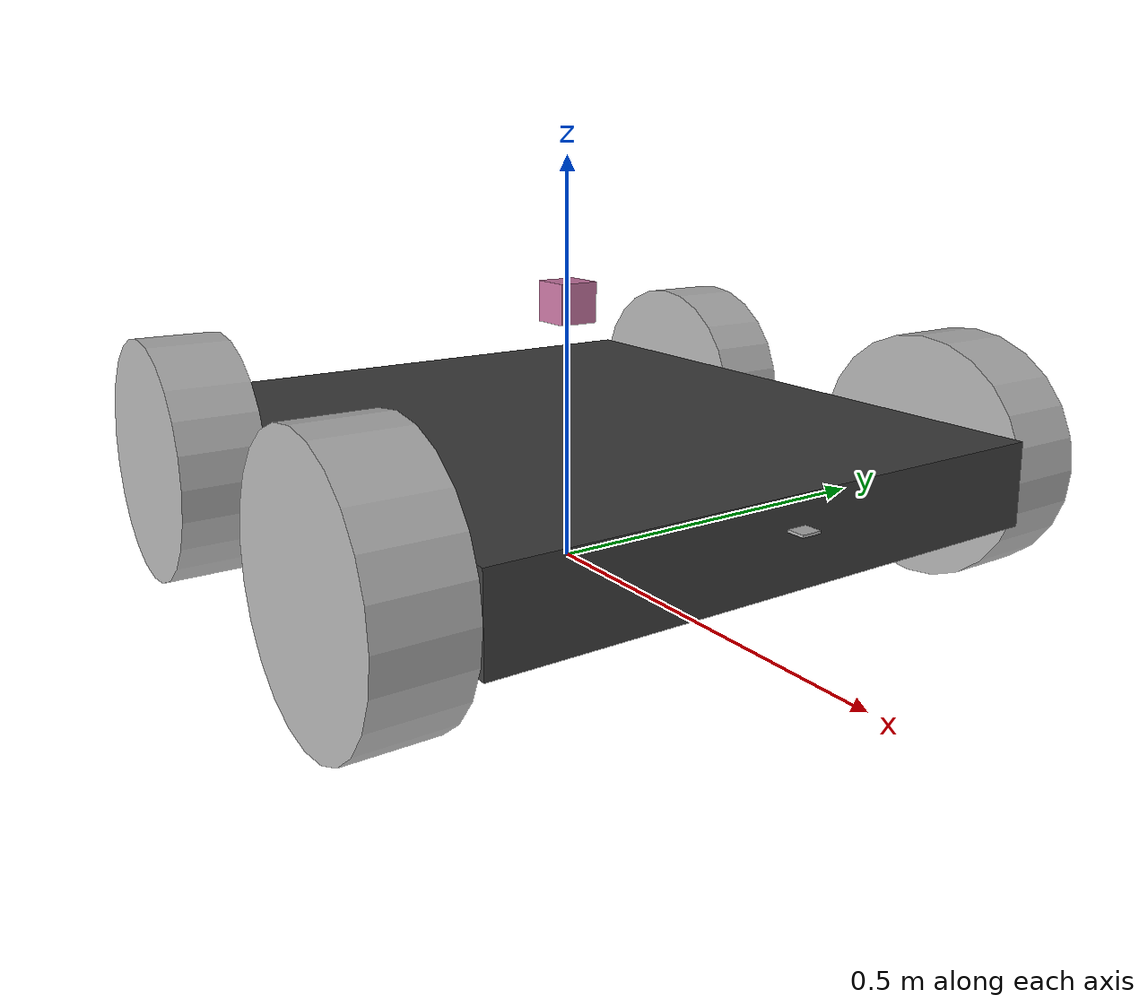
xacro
<?xml version="1.0"?>
<robot xmlns:xacro="http://www.ros.org/wiki/xacro" name="rover">
<xacro:include filename="$(find mobile_robot)/urdf/robot.gazebo" />

<xacro:property name="c1"       value="0.083"/>
<xacro:property name="c2"       value="0.5"/>
<xacro:property name="mass"     value="1"/>
<xacro:property name="width"    value="0.8"/>
<xacro:property name="height"   value="0.1"/>
<xacro:property name="depth"    value="0.7 "/>
<xacro:property name="radius"   value="0.15 "/>

<!--  	#############	BODY		############		 -->

<!-- BASE LINK AND JOINT -->

  <link name="base_footprint"/>

  <link name="base_link">
    <visual>
      <origin xyz="0 0 0" rpy="0.0 0.0 0.0"/>
      <geometry>
        <box size="0.8 0.7 0.1" />
      </geometry>
      <material name="DarkGrey">
        <color rgba="0.25 0.25 0.25 1.0"/>
      </material>
    </visual>
    <collision>
      <origin xyz="0 0 0" rpy="0.0 0.0 0.0"/>
      <geometry>
        <box size="0.8 0.7 0.1" />
      </geometry>
    </collision>
    <inertial>
      <mass value="0.5"/>
      <origin xyz="0.0 0.0 0" rpy="0.0 0.0 0.0"/>
      <inertia  ixx="${c1 * mass * (height * height + depth * depth)}" ixy="0.0" ixz="0.0"
                iyy="${c1 * mass * (height * height + depth * depth)}" iyz="0.0"
                izz="${c1 * mass * (height * height + depth * depth)}"/>
    </inertial>
  </link>

<joint name="base_joint" type="fixed">
		<origin xyz="0 0 0.135" rpy="0 0 0" />
		<parent link="base_footprint"/>
		<child link="base_link" />
	</joint>

<!--WHEEL LINKS AND JOINT -->

<xacro:macro name="wheel" params="name x y">
    <link name="wheel_${name}_link">
        <inertial>
            <origin xyz="0 0 0" rpy="0 0 0"/>
            <mass value="0.25"/>
            <inertia  ixx="${c2 * mass * (radius*radius)}" ixy="0.0" ixz="0.0"
                      iyy="${c2 * mass * (radius*radius)}" iyz="0.0"
                      izz="${c2 * mass * (radius*radius)}"/>
        </inertial>
        <visual name="wheel_${name}_visual">
            <origin xyz="0 0 0" rpy="1.57 0.0 0.0"/>
            <geometry>
              <cylinder radius="0.15" length="0.1"/>
            </geometry>
            <material name="LightGrey">
              <color rgba="0.7 0.7 0.7 1.0"/>
            </material>
        </visual>
        <collision>
            <origin xyz="0 0 0" rpy="1.57 0.0 0.0"/>
            <geometry>
              <cylinder radius="0.15" length="0.1"/>
            </geometry>
        </collision>
    </link>
    <joint name="wheel_${name}_joint" type="continuous">
        <origin xyz="${x} ${y} 0" rpy="0 0 0"/>
        <parent link="base_link"/>
        <child link="wheel_${name}_link"/>
        <axis xyz="0 1 0"/>
        <limit velocity="100.0" effort="1000.0" />
        <dynamics damping="1.0" friction="1.0"/>
    </joint>
</xacro:macro>

<!-- Wheel Creating using macros -->
<xacro:wheel name="rear_right"  x="0.250" y =" 0.40"/>
<xacro:wheel name="front_right" x="-0.250" y =" 0.40"/>
<xacro:wheel name="front_left"  x="-0.250" y =" -0.40"/>
<xacro:wheel name="rear_left"   x="0.250" y =" -0.40"/>

<!--  	#############	SENSORS		############		 -->

     <!-- HOKUYO LASER	 -->

  <link name="hokuyo_link">
    <collision>
      <origin xyz="0 0 0 " rpy="0 0 0"/>
      <geometry>
         <box size="0.05 0.05 0.05"/>
      </geometry>
    </collision>
    <visual>
      <origin xyz="0 0 0" rpy="0 0 0"/>
      <geometry>
	    <box size="0.05 0.05 0.05"/>
      </geometry>
    </visual>
    <inertial>
      <mass value="1e-5" />
      <origin xyz="0 0 0.15" rpy="0 0 0"/>
      <inertia ixx="1e-6" ixy="0" ixz="0" iyy="1e-6" iyz="0" izz="1e-6" />
    </inertial>
  </link>

  	<joint name="hokuyo_joint" type="fixed">
    <axis xyz="0 1 0" />
    <origin xyz="0 0 0.325" rpy="0 0 0"/>
    <parent link="base_footprint"/>
    <child link="hokuyo_link"/>
    </joint>

 <!-- CAMERA -->

	 <link name="camera_link_top">
		<collision name="camera_top_collision">
			<origin xyz="0 0 0 " rpy="0 0 0"/>
			<geometry>
		<box size="0.04 0.024 0.003"/>
			</geometry>
		</collision>
		<visual name='camera_top_visual'>
			<origin xyz="0 0 0 " rpy="0 0 0"/>
			<geometry>
		<box size="0.04 0.024 0.003"/>
			</geometry>
		</visual>
		<inertial>
			<mass value="1e-5" />
			<origin xyz="0.4 0 0.15" rpy="0 0 0"/>
			<inertia ixx="1e-6" ixy="0" ixz="0" iyy="1e-6" iyz="0" izz="1e-6" />
		</inertial>
	</link>

 	<joint type="fixed" name="camera_joint_top">
		<axis xyz="0 1 0" />
		<origin xyz="0.4 0 0.15" rpy="0 0 0"/>
		<parent link="base_footprint"/>
		<child link="camera_link_top"/>
	</joint>

   <!-- IMU -->

	 <link name="imu_link">
		<collision name="imu_link_collision">
			<origin xyz="0 0 0 " rpy="0 0 0"/>
			<geometry>
		<box size="0.05 0.003 0.025"/>
			</geometry>
		</collision>
		<visual name='imu_link_visual'>
			<origin xyz="0 0 0 " rpy="0 0 0"/>
			<geometry>
		<box size="0.05 0.003 0.025"/>
			</geometry>
		</visual>
		<inertial>
			<mass value="1e-5" />
			<origin xyz="0 0 0.15" rpy="0 0 0"/>
			<inertia ixx="1e-6" ixy="0" ixz="0" iyy="1e-6" iyz="0" izz="1e-6" />
		</inertial>
	</link>

 	<joint type="fixed" name="imu_joint">
		<axis xyz="0 1 0" />
		<origin xyz="0 0 0.15" rpy="0 0 0"/>
		<parent link="base_footprint"/>
		<child link="imu_link"/>
	</joint>

</robot>
